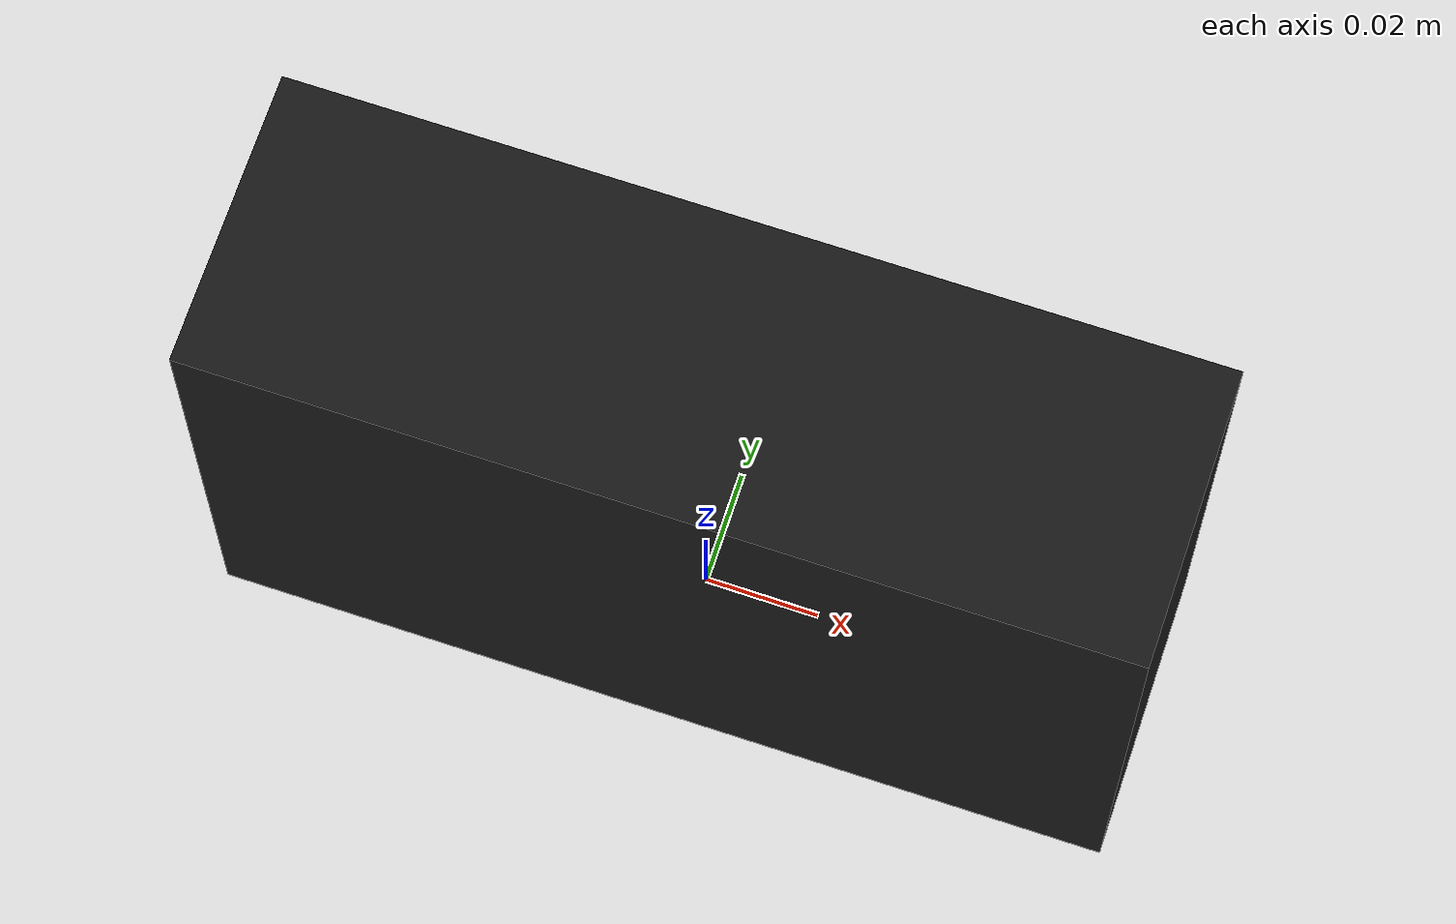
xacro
<?xml version="1.0"?>
<robot xmlns:xacro="http://www.ros.org/wiki/xacro"
       name="gocator">

    <!-- Set properties -->
    <xacro:property name="parent" value="world" />
    <xacro:property name="name" value="gocator" />

    <!-- include the gocator camera -->
    <xacro:include filename="$(find gocator_3100)/urdf/gocator_3109.urdf.xacro" />

    <!-- Set origin link -->
    <link name="${parent}" />

    <!-- call the macro for one camera -->
    <xacro:gocator_3109 parent="${parent}" name="${name}">
        <origin xyz="0 0 0" rpy="0 0 0" />
    </xacro:gocator_3109>

</robot>

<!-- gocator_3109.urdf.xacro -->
<robot xmlns:xacro="http://www.ros.org/wiki/xacro">

    <material name="Gocator/Black">
        <color rgba="0.1 0.1 0.1 1.0"/>
    </material>

    <!-- Just the bounding box of the gocator -->
    <xacro:macro name="gocator_3109" params="parent name">
        <joint name="${parent}_${name}_anchor" type="fixed">
            <parent link="${parent}" />
            <child link="${name}" />
        </joint>

        <link name="${name}">
            <visual>
                <origin xyz="0 0 0.05" rpy="0 0 0"/>
                <geometry>
                    <box size="0.156 0.05 0.1"/>
                </geometry>
                <material name="Gocator/Black"/>
            </visual>
            <collision>
                <origin xyz="0 0 0.05" rpy="0 0 0"/>
                <geometry>
                    <box size="0.156 0.05 0.1"/>
                </geometry>
            </collision>
        </link>

        <joint name="${name}_point_cloud_anchor" type="fixed" >
            <parent link="${name}"/>
            <child link="${name}_point_cloud"/>
            <origin xyz="0 0 ${0.095+0.157+0.035}" rpy="0 3.141592 0"/>
        </joint>

        <link name="${name}_point_cloud"/>

        <gazebo reference="${name}">
            <static>true</static>
        </gazebo>
    </xacro:macro>

</robot>
